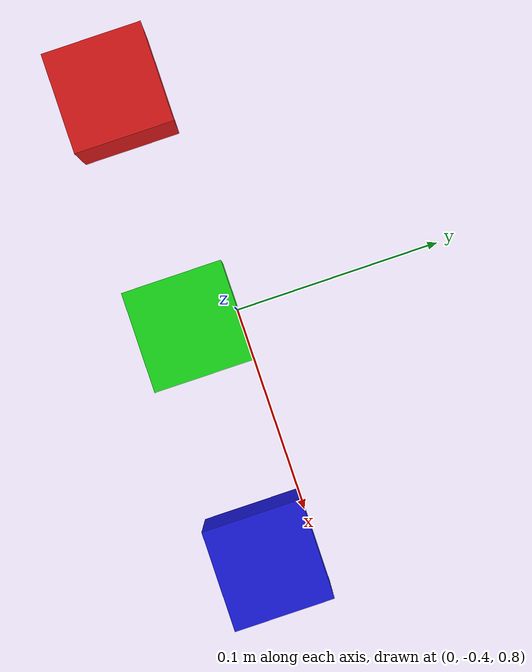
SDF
<?xml version="1.0" ?>
<sdf version="1.9">
  <world name="vision_arm_world">
    <physics name="1ms" type="ignored">
      <max_step_size>0.001</max_step_size>
      <real_time_factor>1.0</real_time_factor>
    </physics>
    <plugin filename="gz-sim-physics-system" name="gz::sim::systems::Physics"/>
    <plugin filename="gz-sim-user-commands-system" name="gz::sim::systems::UserCommands"/>
    <plugin filename="gz-sim-scene-broadcaster-system" name="gz::sim::systems::SceneBroadcaster"/>
    <plugin filename="gz-sim-sensors-system" name="gz::sim::systems::Sensors">
      <render_engine>ogre2</render_engine>
    </plugin>

    <light type="directional" name="sun">
      <cast_shadows>true</cast_shadows>
      <pose>0 0 10 0 0 0</pose>
      <diffuse>0.8 0.8 0.8 1</diffuse>
      <specular>0.2 0.2 0.2 1</specular>
      <direction>-0.5 0.1 -0.9</direction>
    </light>

    <model name="ground_plane">
      <static>true</static>
      <link name="link">
        <collision name="collision">
          <geometry><plane><normal>0 0 1</normal><size>10 10</size></plane></geometry>
        </collision>
        <visual name="visual">
          <geometry><plane><normal>0 0 1</normal><size>10 10</size></plane></geometry>
          <material><ambient>0.3 0.3 0.3 1</ambient><diffuse>0.5 0.5 0.5 1</diffuse></material>
        </visual>
      </link>
    </model>

    <model name="cube_red">
      <pose>-0.12 -0.425 0.775 0 0 0</pose>
      <link name="link">
        <inertial><mass>0.09</mass><inertia><ixx>3.75e-5</ixx><iyy>3.75e-5</iyy><izz>3.75e-5</izz><ixy>0</ixy><ixz>0</ixz><iyz>0</iyz></inertia></inertial>
        <collision name="collision"><geometry><box><size>0.05 0.05 0.05</size></box></geometry></collision>
        <visual name="visual">
          <geometry><box><size>0.05 0.05 0.05</size></box></geometry>
          <material><ambient>0.8 0.1 0.1 1</ambient><diffuse>0.9 0.1 0.1 1</diffuse></material>
        </visual>
      </link>
    </model>
    <model name="cube_green">
      <pose>0.0 -0.425 0.775 0 0 0</pose>
      <link name="link">
        <inertial><mass>0.09</mass><inertia><ixx>3.75e-5</ixx><iyy>3.75e-5</iyy><izz>3.75e-5</izz><ixy>0</ixy><ixz>0</ixz><iyz>0</iyz></inertia></inertial>
        <collision name="collision"><geometry><box><size>0.05 0.05 0.05</size></box></geometry></collision>
        <visual name="visual">
          <geometry><box><size>0.05 0.05 0.05</size></box></geometry>
          <material><ambient>0.1 0.8 0.1 1</ambient><diffuse>0.1 0.9 0.1 1</diffuse></material>
        </visual>
      </link>
    </model>
    <model name="cube_blue">
      <pose>0.12 -0.425 0.775 0 0 0</pose>
      <link name="link">
        <inertial><mass>0.09</mass><inertia><ixx>3.75e-5</ixx><iyy>3.75e-5</iyy><izz>3.75e-5</izz><ixy>0</ixy><ixz>0</ixz><iyz>0</iyz></inertia></inertial>
        <collision name="collision"><geometry><box><size>0.05 0.05 0.05</size></box></geometry></collision>
        <visual name="visual">
          <geometry><box><size>0.05 0.05 0.05</size></box></geometry>
          <material><ambient>0.1 0.1 0.8 1</ambient><diffuse>0.1 0.1 0.9 1</diffuse></material>
        </visual>
      </link>
    </model>
  </world>
</sdf>
